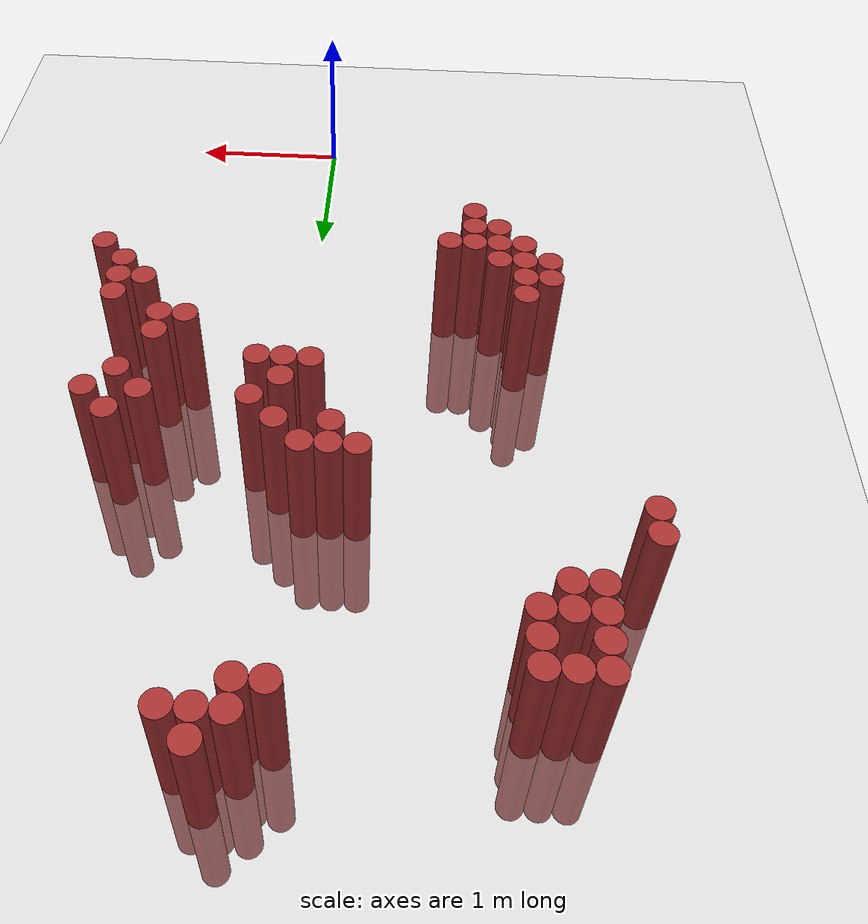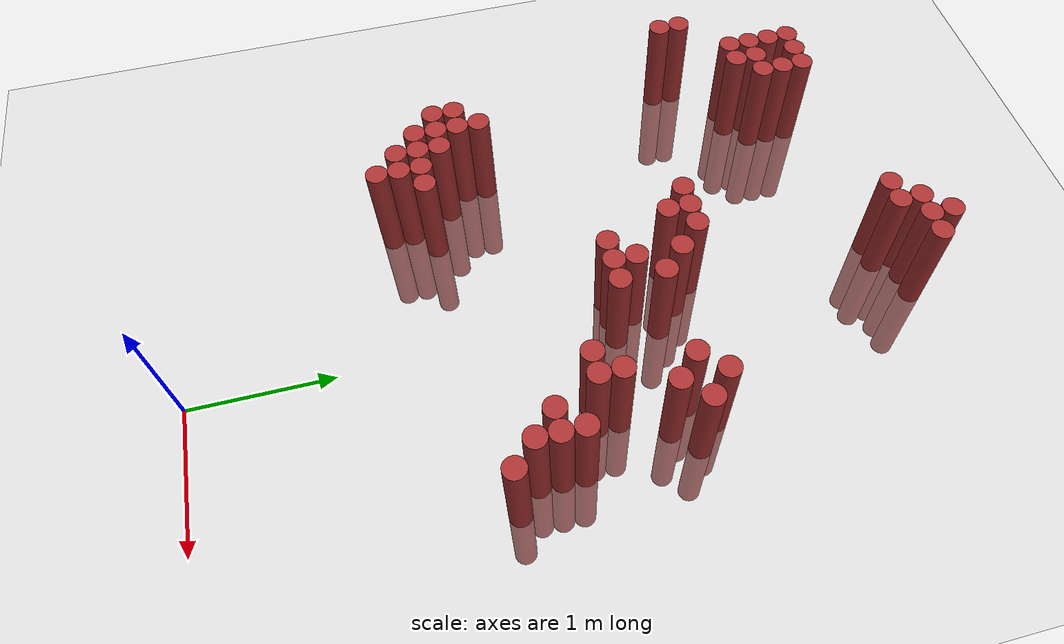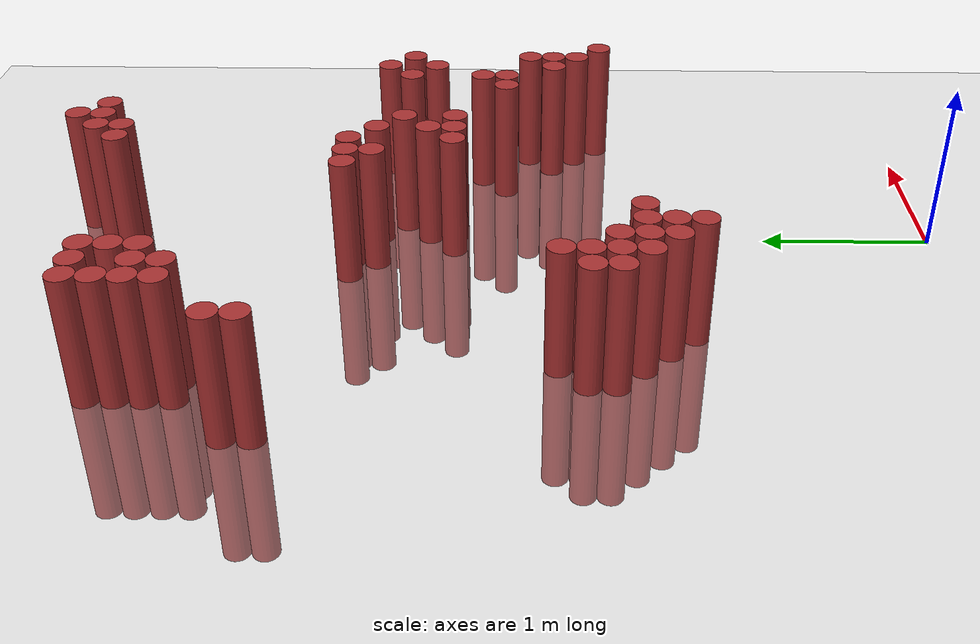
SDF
<sdf version="1.6">
 <world name="default">
  <model name="ground_plane">
   <static>1</static>
   <link name="link">
    <collision name="collision">
     <geometry><plane><normal>0 0 1</normal><size>100 100</size></plane></geometry>
     <surface><friction><ode><mu>100</mu><mu2>50</mu2></ode></friction></surface>
    </collision>
    <visual name="visual">
     <cast_shadows>0</cast_shadows>
     <geometry><plane><normal>0 0 1</normal><size>100 100</size></plane></geometry>
     <material>
      <script><uri>file://media/materials/scripts/gazebo.material</uri><name>Gazebo/Grey</name></script>
     </material>
    </visual>
   </link>
  </model>
  <model name="unit_cylinder_324">
   <static>1</static>
   <pose>-1.925000 3.775000 0.000000 0.000000 0.000000 0.000000</pose>
   <link name="link">
    <inertial>
     <mass>1</mass>
     <inertia><ixx>0.145833</ixx><ixy>0</ixy><ixz>0</ixz><iyy>0.145833</iyy><iyz>0</iyz><izz>0.125</izz></inertia>
    </inertial>
    <collision name="collision">
     <geometry><cylinder><radius>0.075000</radius><length>1.5</length></cylinder></geometry>
    </collision>
    <visual name="visual">
     <geometry><cylinder><radius>0.075000</radius><length>1.5</length></cylinder></geometry>
     <material>
      <ambient>0.648000 0.192000 0.192000 1</ambient>
      <diffuse>0.648000 0.192000 0.192000 1</diffuse>
     </material>
     <material>
      <script><name>Gazebo/Grey</name><uri>file://media/materials/scripts/gazebo.material</uri></script>
     </material>
    </visual>
   </link>
  </model>
  <model name="unit_cylinder_325">
   <static>1</static>
   <pose>-1.925000 3.925000 0.000000 0.000000 0.000000 0.000000</pose>
   <link name="link">
    <inertial>
     <mass>1</mass>
     <inertia><ixx>0.145833</ixx><ixy>0</ixy><ixz>0</ixz><iyy>0.145833</iyy><iyz>0</iyz><izz>0.125</izz></inertia>
    </inertial>
    <collision name="collision">
     <geometry><cylinder><radius>0.075000</radius><length>1.5</length></cylinder></geometry>
    </collision>
    <visual name="visual">
     <geometry><cylinder><radius>0.075000</radius><length>1.5</length></cylinder></geometry>
     <material>
      <ambient>0.648000 0.192000 0.192000 1</ambient>
      <diffuse>0.648000 0.192000 0.192000 1</diffuse>
     </material>
     <material>
      <script><name>Gazebo/Grey</name><uri>file://media/materials/scripts/gazebo.material</uri></script>
     </material>
    </visual>
   </link>
  </model>
  <model name="unit_cylinder_327">
   <static>1</static>
   <pose>-1.625000 4.225000 0.000000 0.000000 0.000000 0.000000</pose>
   <link name="link">
    <inertial>
     <mass>1</mass>
     <inertia><ixx>0.145833</ixx><ixy>0</ixy><ixz>0</ixz><iyy>0.145833</iyy><iyz>0</iyz><izz>0.125</izz></inertia>
    </inertial>
    <collision name="collision">
     <geometry><cylinder><radius>0.075000</radius><length>1.5</length></cylinder></geometry>
    </collision>
    <visual name="visual">
     <geometry><cylinder><radius>0.075000</radius><length>1.5</length></cylinder></geometry>
     <material>
      <ambient>0.648000 0.192000 0.192000 1</ambient>
      <diffuse>0.648000 0.192000 0.192000 1</diffuse>
     </material>
     <material>
      <script><name>Gazebo/Grey</name><uri>file://media/materials/scripts/gazebo.material</uri></script>
     </material>
    </visual>
   </link>
  </model>
  <model name="unit_cylinder_328">
   <static>1</static>
   <pose>-1.625000 4.375000 0.000000 0.000000 0.000000 0.000000</pose>
   <link name="link">
    <inertial>
     <mass>1</mass>
     <inertia><ixx>0.145833</ixx><ixy>0</ixy><ixz>0</ixz><iyy>0.145833</iyy><iyz>0</iyz><izz>0.125</izz></inertia>
    </inertial>
    <collision name="collision">
     <geometry><cylinder><radius>0.075000</radius><length>1.5</length></cylinder></geometry>
    </collision>
    <visual name="visual">
     <geometry><cylinder><radius>0.075000</radius><length>1.5</length></cylinder></geometry>
     <material>
      <ambient>0.648000 0.192000 0.192000 1</ambient>
      <diffuse>0.648000 0.192000 0.192000 1</diffuse>
     </material>
     <material>
      <script><name>Gazebo/Grey</name><uri>file://media/materials/scripts/gazebo.material</uri></script>
     </material>
    </visual>
   </link>
  </model>
  <model name="unit_cylinder_329">
   <static>1</static>
   <pose>-1.625000 4.525000 0.000000 0.000000 0.000000 0.000000</pose>
   <link name="link">
    <inertial>
     <mass>1</mass>
     <inertia><ixx>0.145833</ixx><ixy>0</ixy><ixz>0</ixz><iyy>0.145833</iyy><iyz>0</iyz><izz>0.125</izz></inertia>
    </inertial>
    <collision name="collision">
     <geometry><cylinder><radius>0.075000</radius><length>1.5</length></cylinder></geometry>
    </collision>
    <visual name="visual">
     <geometry><cylinder><radius>0.075000</radius><length>1.5</length></cylinder></geometry>
     <material>
      <ambient>0.648000 0.192000 0.192000 1</ambient>
      <diffuse>0.648000 0.192000 0.192000 1</diffuse>
     </material>
     <material>
      <script><name>Gazebo/Grey</name><uri>file://media/materials/scripts/gazebo.material</uri></script>
     </material>
    </visual>
   </link>
  </model>
  <model name="unit_cylinder_330">
   <static>1</static>
   <pose>-1.625000 4.675000 0.000000 0.000000 0.000000 0.000000</pose>
   <link name="link">
    <inertial>
     <mass>1</mass>
     <inertia><ixx>0.145833</ixx><ixy>0</ixy><ixz>0</ixz><iyy>0.145833</iyy><iyz>0</iyz><izz>0.125</izz></inertia>
    </inertial>
    <collision name="collision">
     <geometry><cylinder><radius>0.075000</radius><length>1.5</length></cylinder></geometry>
    </collision>
    <visual name="visual">
     <geometry><cylinder><radius>0.075000</radius><length>1.5</length></cylinder></geometry>
     <material>
      <ambient>0.648000 0.192000 0.192000 1</ambient>
      <diffuse>0.648000 0.192000 0.192000 1</diffuse>
     </material>
     <material>
      <script><name>Gazebo/Grey</name><uri>file://media/materials/scripts/gazebo.material</uri></script>
     </material>
    </visual>
   </link>
  </model>
  <model name="unit_cylinder_333">
   <static>1</static>
   <pose>-1.475000 1.975000 0.000000 0.000000 0.000000 0.000000</pose>
   <link name="link">
    <inertial>
     <mass>1</mass>
     <inertia><ixx>0.145833</ixx><ixy>0</ixy><ixz>0</ixz><iyy>0.145833</iyy><iyz>0</iyz><izz>0.125</izz></inertia>
    </inertial>
    <collision name="collision">
     <geometry><cylinder><radius>0.075000</radius><length>1.5</length></cylinder></geometry>
    </collision>
    <visual name="visual">
     <geometry><cylinder><radius>0.075000</radius><length>1.5</length></cylinder></geometry>
     <material>
      <ambient>0.648000 0.192000 0.192000 1</ambient>
      <diffuse>0.648000 0.192000 0.192000 1</diffuse>
     </material>
     <material>
      <script><name>Gazebo/Grey</name><uri>file://media/materials/scripts/gazebo.material</uri></script>
     </material>
    </visual>
   </link>
  </model>
  <model name="unit_cylinder_334">
   <static>1</static>
   <pose>-1.475000 2.125000 0.000000 0.000000 0.000000 0.000000</pose>
   <link name="link">
    <inertial>
     <mass>1</mass>
     <inertia><ixx>0.145833</ixx><ixy>0</ixy><ixz>0</ixz><iyy>0.145833</iyy><iyz>0</iyz><izz>0.125</izz></inertia>
    </inertial>
    <collision name="collision">
     <geometry><cylinder><radius>0.075000</radius><length>1.5</length></cylinder></geometry>
    </collision>
    <visual name="visual">
     <geometry><cylinder><radius>0.075000</radius><length>1.5</length></cylinder></geometry>
     <material>
      <ambient>0.648000 0.192000 0.192000 1</ambient>
      <diffuse>0.648000 0.192000 0.192000 1</diffuse>
     </material>
     <material>
      <script><name>Gazebo/Grey</name><uri>file://media/materials/scripts/gazebo.material</uri></script>
     </material>
    </visual>
   </link>
  </model>
  <model name="unit_cylinder_335">
   <static>1</static>
   <pose>-1.475000 4.225000 0.000000 0.000000 0.000000 0.000000</pose>
   <link name="link">
    <inertial>
     <mass>1</mass>
     <inertia><ixx>0.145833</ixx><ixy>0</ixy><ixz>0</ixz><iyy>0.145833</iyy><iyz>0</iyz><izz>0.125</izz></inertia>
    </inertial>
    <collision name="collision">
     <geometry><cylinder><radius>0.075000</radius><length>1.5</length></cylinder></geometry>
    </collision>
    <visual name="visual">
     <geometry><cylinder><radius>0.075000</radius><length>1.5</length></cylinder></geometry>
     <material>
      <ambient>0.648000 0.192000 0.192000 1</ambient>
      <diffuse>0.648000 0.192000 0.192000 1</diffuse>
     </material>
     <material>
      <script><name>Gazebo/Grey</name><uri>file://media/materials/scripts/gazebo.material</uri></script>
     </material>
    </visual>
   </link>
  </model>
  <model name="unit_cylinder_336">
   <static>1</static>
   <pose>-1.475000 4.375000 0.000000 0.000000 0.000000 0.000000</pose>
   <link name="link">
    <inertial>
     <mass>1</mass>
     <inertia><ixx>0.145833</ixx><ixy>0</ixy><ixz>0</ixz><iyy>0.145833</iyy><iyz>0</iyz><izz>0.125</izz></inertia>
    </inertial>
    <collision name="collision">
     <geometry><cylinder><radius>0.075000</radius><length>1.5</length></cylinder></geometry>
    </collision>
    <visual name="visual">
     <geometry><cylinder><radius>0.075000</radius><length>1.5</length></cylinder></geometry>
     <material>
      <ambient>0.648000 0.192000 0.192000 1</ambient>
      <diffuse>0.648000 0.192000 0.192000 1</diffuse>
     </material>
     <material>
      <script><name>Gazebo/Grey</name><uri>file://media/materials/scripts/gazebo.material</uri></script>
     </material>
    </visual>
   </link>
  </model>
  <model name="unit_cylinder_337">
   <static>1</static>
   <pose>-1.475000 4.675000 0.000000 0.000000 0.000000 0.000000</pose>
   <link name="link">
    <inertial>
     <mass>1</mass>
     <inertia><ixx>0.145833</ixx><ixy>0</ixy><ixz>0</ixz><iyy>0.145833</iyy><iyz>0</iyz><izz>0.125</izz></inertia>
    </inertial>
    <collision name="collision">
     <geometry><cylinder><radius>0.075000</radius><length>1.5</length></cylinder></geometry>
    </collision>
    <visual name="visual">
     <geometry><cylinder><radius>0.075000</radius><length>1.5</length></cylinder></geometry>
     <material>
      <ambient>0.648000 0.192000 0.192000 1</ambient>
      <diffuse>0.648000 0.192000 0.192000 1</diffuse>
     </material>
     <material>
      <script><name>Gazebo/Grey</name><uri>file://media/materials/scripts/gazebo.material</uri></script>
     </material>
    </visual>
   </link>
  </model>
  <model name="unit_cylinder_343">
   <static>1</static>
   <pose>-1.325000 1.825000 0.000000 0.000000 0.000000 0.000000</pose>
   <link name="link">
    <inertial>
     <mass>1</mass>
     <inertia><ixx>0.145833</ixx><ixy>0</ixy><ixz>0</ixz><iyy>0.145833</iyy><iyz>0</iyz><izz>0.125</izz></inertia>
    </inertial>
    <collision name="collision">
     <geometry><cylinder><radius>0.075000</radius><length>1.5</length></cylinder></geometry>
    </collision>
    <visual name="visual">
     <geometry><cylinder><radius>0.075000</radius><length>1.5</length></cylinder></geometry>
     <material>
      <ambient>0.648000 0.192000 0.192000 1</ambient>
      <diffuse>0.648000 0.192000 0.192000 1</diffuse>
     </material>
     <material>
      <script><name>Gazebo/Grey</name><uri>file://media/materials/scripts/gazebo.material</uri></script>
     </material>
    </visual>
   </link>
  </model>
  <model name="unit_cylinder_344">
   <static>1</static>
   <pose>-1.325000 1.975000 0.000000 0.000000 0.000000 0.000000</pose>
   <link name="link">
    <inertial>
     <mass>1</mass>
     <inertia><ixx>0.145833</ixx><ixy>0</ixy><ixz>0</ixz><iyy>0.145833</iyy><iyz>0</iyz><izz>0.125</izz></inertia>
    </inertial>
    <collision name="collision">
     <geometry><cylinder><radius>0.075000</radius><length>1.5</length></cylinder></geometry>
    </collision>
    <visual name="visual">
     <geometry><cylinder><radius>0.075000</radius><length>1.5</length></cylinder></geometry>
     <material>
      <ambient>0.648000 0.192000 0.192000 1</ambient>
      <diffuse>0.648000 0.192000 0.192000 1</diffuse>
     </material>
     <material>
      <script><name>Gazebo/Grey</name><uri>file://media/materials/scripts/gazebo.material</uri></script>
     </material>
    </visual>
   </link>
  </model>
  <model name="unit_cylinder_345">
   <static>1</static>
   <pose>-1.325000 2.125000 0.000000 0.000000 0.000000 0.000000</pose>
   <link name="link">
    <inertial>
     <mass>1</mass>
     <inertia><ixx>0.145833</ixx><ixy>0</ixy><ixz>0</ixz><iyy>0.145833</iyy><iyz>0</iyz><izz>0.125</izz></inertia>
    </inertial>
    <collision name="collision">
     <geometry><cylinder><radius>0.075000</radius><length>1.5</length></cylinder></geometry>
    </collision>
    <visual name="visual">
     <geometry><cylinder><radius>0.075000</radius><length>1.5</length></cylinder></geometry>
     <material>
      <ambient>0.648000 0.192000 0.192000 1</ambient>
      <diffuse>0.648000 0.192000 0.192000 1</diffuse>
     </material>
     <material>
      <script><name>Gazebo/Grey</name><uri>file://media/materials/scripts/gazebo.material</uri></script>
     </material>
    </visual>
   </link>
  </model>
  <model name="unit_cylinder_346">
   <static>1</static>
   <pose>-1.325000 2.275000 0.000000 0.000000 0.000000 0.000000</pose>
   <link name="link">
    <inertial>
     <mass>1</mass>
     <inertia><ixx>0.145833</ixx><ixy>0</ixy><ixz>0</ixz><iyy>0.145833</iyy><iyz>0</iyz><izz>0.125</izz></inertia>
    </inertial>
    <collision name="collision">
     <geometry><cylinder><radius>0.075000</radius><length>1.5</length></cylinder></geometry>
    </collision>
    <visual name="visual">
     <geometry><cylinder><radius>0.075000</radius><length>1.5</length></cylinder></geometry>
     <material>
      <ambient>0.648000 0.192000 0.192000 1</ambient>
      <diffuse>0.648000 0.192000 0.192000 1</diffuse>
     </material>
     <material>
      <script><name>Gazebo/Grey</name><uri>file://media/materials/scripts/gazebo.material</uri></script>
     </material>
    </visual>
   </link>
  </model>
  <model name="unit_cylinder_347">
   <static>1</static>
   <pose>-1.325000 4.375000 0.000000 0.000000 0.000000 0.000000</pose>
   <link name="link">
    <inertial>
     <mass>1</mass>
     <inertia><ixx>0.145833</ixx><ixy>0</ixy><ixz>0</ixz><iyy>0.145833</iyy><iyz>0</iyz><izz>0.125</izz></inertia>
    </inertial>
    <collision name="collision">
     <geometry><cylinder><radius>0.075000</radius><length>1.5</length></cylinder></geometry>
    </collision>
    <visual name="visual">
     <geometry><cylinder><radius>0.075000</radius><length>1.5</length></cylinder></geometry>
     <material>
      <ambient>0.648000 0.192000 0.192000 1</ambient>
      <diffuse>0.648000 0.192000 0.192000 1</diffuse>
     </material>
     <material>
      <script><name>Gazebo/Grey</name><uri>file://media/materials/scripts/gazebo.material</uri></script>
     </material>
    </visual>
   </link>
  </model>
  <model name="unit_cylinder_348">
   <static>1</static>
   <pose>-1.325000 4.525000 0.000000 0.000000 0.000000 0.000000</pose>
   <link name="link">
    <inertial>
     <mass>1</mass>
     <inertia><ixx>0.145833</ixx><ixy>0</ixy><ixz>0</ixz><iyy>0.145833</iyy><iyz>0</iyz><izz>0.125</izz></inertia>
    </inertial>
    <collision name="collision">
     <geometry><cylinder><radius>0.075000</radius><length>1.5</length></cylinder></geometry>
    </collision>
    <visual name="visual">
     <geometry><cylinder><radius>0.075000</radius><length>1.5</length></cylinder></geometry>
     <material>
      <ambient>0.648000 0.192000 0.192000 1</ambient>
      <diffuse>0.648000 0.192000 0.192000 1</diffuse>
     </material>
     <material>
      <script><name>Gazebo/Grey</name><uri>file://media/materials/scripts/gazebo.material</uri></script>
     </material>
    </visual>
   </link>
  </model>
  <model name="unit_cylinder_349">
   <static>1</static>
   <pose>-1.325000 4.675000 0.000000 0.000000 0.000000 0.000000</pose>
   <link name="link">
    <inertial>
     <mass>1</mass>
     <inertia><ixx>0.145833</ixx><ixy>0</ixy><ixz>0</ixz><iyy>0.145833</iyy><iyz>0</iyz><izz>0.125</izz></inertia>
    </inertial>
    <collision name="collision">
     <geometry><cylinder><radius>0.075000</radius><length>1.5</length></cylinder></geometry>
    </collision>
    <visual name="visual">
     <geometry><cylinder><radius>0.075000</radius><length>1.5</length></cylinder></geometry>
     <material>
      <ambient>0.648000 0.192000 0.192000 1</ambient>
      <diffuse>0.648000 0.192000 0.192000 1</diffuse>
     </material>
     <material>
      <script><name>Gazebo/Grey</name><uri>file://media/materials/scripts/gazebo.material</uri></script>
     </material>
    </visual>
   </link>
  </model>
  <model name="unit_cylinder_352">
   <static>1</static>
   <pose>-1.175000 1.675000 0.000000 0.000000 0.000000 0.000000</pose>
   <link name="link">
    <inertial>
     <mass>1</mass>
     <inertia><ixx>0.145833</ixx><ixy>0</ixy><ixz>0</ixz><iyy>0.145833</iyy><iyz>0</iyz><izz>0.125</izz></inertia>
    </inertial>
    <collision name="collision">
     <geometry><cylinder><radius>0.075000</radius><length>1.5</length></cylinder></geometry>
    </collision>
    <visual name="visual">
     <geometry><cylinder><radius>0.075000</radius><length>1.5</length></cylinder></geometry>
     <material>
      <ambient>0.648000 0.192000 0.192000 1</ambient>
      <diffuse>0.648000 0.192000 0.192000 1</diffuse>
     </material>
     <material>
      <script><name>Gazebo/Grey</name><uri>file://media/materials/scripts/gazebo.material</uri></script>
     </material>
    </visual>
   </link>
  </model>
  <model name="unit_cylinder_353">
   <static>1</static>
   <pose>-1.175000 1.825000 0.000000 0.000000 0.000000 0.000000</pose>
   <link name="link">
    <inertial>
     <mass>1</mass>
     <inertia><ixx>0.145833</ixx><ixy>0</ixy><ixz>0</ixz><iyy>0.145833</iyy><iyz>0</iyz><izz>0.125</izz></inertia>
    </inertial>
    <collision name="collision">
     <geometry><cylinder><radius>0.075000</radius><length>1.5</length></cylinder></geometry>
    </collision>
    <visual name="visual">
     <geometry><cylinder><radius>0.075000</radius><length>1.5</length></cylinder></geometry>
     <material>
      <ambient>0.648000 0.192000 0.192000 1</ambient>
      <diffuse>0.648000 0.192000 0.192000 1</diffuse>
     </material>
     <material>
      <script><name>Gazebo/Grey</name><uri>file://media/materials/scripts/gazebo.material</uri></script>
     </material>
    </visual>
   </link>
  </model>
  <model name="unit_cylinder_354">
   <static>1</static>
   <pose>-1.175000 1.975000 0.000000 0.000000 0.000000 0.000000</pose>
   <link name="link">
    <inertial>
     <mass>1</mass>
     <inertia><ixx>0.145833</ixx><ixy>0</ixy><ixz>0</ixz><iyy>0.145833</iyy><iyz>0</iyz><izz>0.125</izz></inertia>
    </inertial>
    <collision name="collision">
     <geometry><cylinder><radius>0.075000</radius><length>1.5</length></cylinder></geometry>
    </collision>
    <visual name="visual">
     <geometry><cylinder><radius>0.075000</radius><length>1.5</length></cylinder></geometry>
     <material>
      <ambient>0.648000 0.192000 0.192000 1</ambient>
      <diffuse>0.648000 0.192000 0.192000 1</diffuse>
     </material>
     <material>
      <script><name>Gazebo/Grey</name><uri>file://media/materials/scripts/gazebo.material</uri></script>
     </material>
    </visual>
   </link>
  </model>
  <model name="unit_cylinder_355">
   <static>1</static>
   <pose>-1.025000 1.525000 0.000000 0.000000 0.000000 0.000000</pose>
   <link name="link">
    <inertial>
     <mass>1</mass>
     <inertia><ixx>0.145833</ixx><ixy>0</ixy><ixz>0</ixz><iyy>0.145833</iyy><iyz>0</iyz><izz>0.125</izz></inertia>
    </inertial>
    <collision name="collision">
     <geometry><cylinder><radius>0.075000</radius><length>1.5</length></cylinder></geometry>
    </collision>
    <visual name="visual">
     <geometry><cylinder><radius>0.075000</radius><length>1.5</length></cylinder></geometry>
     <material>
      <ambient>0.648000 0.192000 0.192000 1</ambient>
      <diffuse>0.648000 0.192000 0.192000 1</diffuse>
     </material>
     <material>
      <script><name>Gazebo/Grey</name><uri>file://media/materials/scripts/gazebo.material</uri></script>
     </material>
    </visual>
   </link>
  </model>
  <model name="unit_cylinder_356">
   <static>1</static>
   <pose>-1.025000 1.675000 0.000000 0.000000 0.000000 0.000000</pose>
   <link name="link">
    <inertial>
     <mass>1</mass>
     <inertia><ixx>0.145833</ixx><ixy>0</ixy><ixz>0</ixz><iyy>0.145833</iyy><iyz>0</iyz><izz>0.125</izz></inertia>
    </inertial>
    <collision name="collision">
     <geometry><cylinder><radius>0.075000</radius><length>1.5</length></cylinder></geometry>
    </collision>
    <visual name="visual">
     <geometry><cylinder><radius>0.075000</radius><length>1.5</length></cylinder></geometry>
     <material>
      <ambient>0.648000 0.192000 0.192000 1</ambient>
      <diffuse>0.648000 0.192000 0.192000 1</diffuse>
     </material>
     <material>
      <script><name>Gazebo/Grey</name><uri>file://media/materials/scripts/gazebo.material</uri></script>
     </material>
    </visual>
   </link>
  </model>
  <model name="unit_cylinder_357">
   <static>1</static>
   <pose>-1.025000 1.825000 0.000000 0.000000 0.000000 0.000000</pose>
   <link name="link">
    <inertial>
     <mass>1</mass>
     <inertia><ixx>0.145833</ixx><ixy>0</ixy><ixz>0</ixz><iyy>0.145833</iyy><iyz>0</iyz><izz>0.125</izz></inertia>
    </inertial>
    <collision name="collision">
     <geometry><cylinder><radius>0.075000</radius><length>1.5</length></cylinder></geometry>
    </collision>
    <visual name="visual">
     <geometry><cylinder><radius>0.075000</radius><length>1.5</length></cylinder></geometry>
     <material>
      <ambient>0.648000 0.192000 0.192000 1</ambient>
      <diffuse>0.648000 0.192000 0.192000 1</diffuse>
     </material>
     <material>
      <script><name>Gazebo/Grey</name><uri>file://media/materials/scripts/gazebo.material</uri></script>
     </material>
    </visual>
   </link>
  </model>
  <model name="unit_cylinder_360">
   <static>1</static>
   <pose>-0.875000 1.825000 0.000000 0.000000 0.000000 0.000000</pose>
   <link name="link">
    <inertial>
     <mass>1</mass>
     <inertia><ixx>0.145833</ixx><ixy>0</ixy><ixz>0</ixz><iyy>0.145833</iyy><iyz>0</iyz><izz>0.125</izz></inertia>
    </inertial>
    <collision name="collision">
     <geometry><cylinder><radius>0.075000</radius><length>1.5</length></cylinder></geometry>
    </collision>
    <visual name="visual">
     <geometry><cylinder><radius>0.075000</radius><length>1.5</length></cylinder></geometry>
     <material>
      <ambient>0.648000 0.192000 0.192000 1</ambient>
      <diffuse>0.648000 0.192000 0.192000 1</diffuse>
     </material>
     <material>
      <script><name>Gazebo/Grey</name><uri>file://media/materials/scripts/gazebo.material</uri></script>
     </material>
    </visual>
   </link>
  </model>
  <model name="unit_cylinder_367">
   <static>1</static>
   <pose>-0.425000 3.475000 0.000000 0.000000 0.000000 0.000000</pose>
   <link name="link">
    <inertial>
     <mass>1</mass>
     <inertia><ixx>0.145833</ixx><ixy>0</ixy><ixz>0</ixz><iyy>0.145833</iyy><iyz>0</iyz><izz>0.125</izz></inertia>
    </inertial>
    <collision name="collision">
     <geometry><cylinder><radius>0.075000</radius><length>1.5</length></cylinder></geometry>
    </collision>
    <visual name="visual">
     <geometry><cylinder><radius>0.075000</radius><length>1.5</length></cylinder></geometry>
     <material>
      <ambient>0.648000 0.192000 0.192000 1</ambient>
      <diffuse>0.648000 0.192000 0.192000 1</diffuse>
     </material>
     <material>
      <script><name>Gazebo/Grey</name><uri>file://media/materials/scripts/gazebo.material</uri></script>
     </material>
    </visual>
   </link>
  </model>
  <model name="unit_cylinder_368">
   <static>1</static>
   <pose>-0.275000 3.325000 0.000000 0.000000 0.000000 0.000000</pose>
   <link name="link">
    <inertial>
     <mass>1</mass>
     <inertia><ixx>0.145833</ixx><ixy>0</ixy><ixz>0</ixz><iyy>0.145833</iyy><iyz>0</iyz><izz>0.125</izz></inertia>
    </inertial>
    <collision name="collision">
     <geometry><cylinder><radius>0.075000</radius><length>1.5</length></cylinder></geometry>
    </collision>
    <visual name="visual">
     <geometry><cylinder><radius>0.075000</radius><length>1.5</length></cylinder></geometry>
     <material>
      <ambient>0.648000 0.192000 0.192000 1</ambient>
      <diffuse>0.648000 0.192000 0.192000 1</diffuse>
     </material>
     <material>
      <script><name>Gazebo/Grey</name><uri>file://media/materials/scripts/gazebo.material</uri></script>
     </material>
    </visual>
   </link>
  </model>
  <model name="unit_cylinder_369">
   <static>1</static>
   <pose>-0.275000 3.475000 0.000000 0.000000 0.000000 0.000000</pose>
   <link name="link">
    <inertial>
     <mass>1</mass>
     <inertia><ixx>0.145833</ixx><ixy>0</ixy><ixz>0</ixz><iyy>0.145833</iyy><iyz>0</iyz><izz>0.125</izz></inertia>
    </inertial>
    <collision name="collision">
     <geometry><cylinder><radius>0.075000</radius><length>1.5</length></cylinder></geometry>
    </collision>
    <visual name="visual">
     <geometry><cylinder><radius>0.075000</radius><length>1.5</length></cylinder></geometry>
     <material>
      <ambient>0.648000 0.192000 0.192000 1</ambient>
      <diffuse>0.648000 0.192000 0.192000 1</diffuse>
     </material>
     <material>
      <script><name>Gazebo/Grey</name><uri>file://media/materials/scripts/gazebo.material</uri></script>
     </material>
    </visual>
   </link>
  </model>
  <model name="unit_cylinder_371">
   <static>1</static>
   <pose>-0.125000 2.875000 0.000000 0.000000 0.000000 0.000000</pose>
   <link name="link">
    <inertial>
     <mass>1</mass>
     <inertia><ixx>0.145833</ixx><ixy>0</ixy><ixz>0</ixz><iyy>0.145833</iyy><iyz>0</iyz><izz>0.125</izz></inertia>
    </inertial>
    <collision name="collision">
     <geometry><cylinder><radius>0.075000</radius><length>1.5</length></cylinder></geometry>
    </collision>
    <visual name="visual">
     <geometry><cylinder><radius>0.075000</radius><length>1.5</length></cylinder></geometry>
     <material>
      <ambient>0.648000 0.192000 0.192000 1</ambient>
      <diffuse>0.648000 0.192000 0.192000 1</diffuse>
     </material>
     <material>
      <script><name>Gazebo/Grey</name><uri>file://media/materials/scripts/gazebo.material</uri></script>
     </material>
    </visual>
   </link>
  </model>
  <model name="unit_cylinder_372">
   <static>1</static>
   <pose>-0.125000 3.475000 0.000000 0.000000 0.000000 0.000000</pose>
   <link name="link">
    <inertial>
     <mass>1</mass>
     <inertia><ixx>0.145833</ixx><ixy>0</ixy><ixz>0</ixz><iyy>0.145833</iyy><iyz>0</iyz><izz>0.125</izz></inertia>
    </inertial>
    <collision name="collision">
     <geometry><cylinder><radius>0.075000</radius><length>1.5</length></cylinder></geometry>
    </collision>
    <visual name="visual">
     <geometry><cylinder><radius>0.075000</radius><length>1.5</length></cylinder></geometry>
     <material>
      <ambient>0.648000 0.192000 0.192000 1</ambient>
      <diffuse>0.648000 0.192000 0.192000 1</diffuse>
     </material>
     <material>
      <script><name>Gazebo/Grey</name><uri>file://media/materials/scripts/gazebo.material</uri></script>
     </material>
    </visual>
   </link>
  </model>
  <model name="unit_cylinder_373">
   <static>1</static>
   <pose>-0.125000 4.825000 0.000000 0.000000 0.000000 0.000000</pose>
   <link name="link">
    <inertial>
     <mass>1</mass>
     <inertia><ixx>0.145833</ixx><ixy>0</ixy><ixz>0</ixz><iyy>0.145833</iyy><iyz>0</iyz><izz>0.125</izz></inertia>
    </inertial>
    <collision name="collision">
     <geometry><cylinder><radius>0.075000</radius><length>1.5</length></cylinder></geometry>
    </collision>
    <visual name="visual">
     <geometry><cylinder><radius>0.075000</radius><length>1.5</length></cylinder></geometry>
     <material>
      <ambient>0.648000 0.192000 0.192000 1</ambient>
      <diffuse>0.648000 0.192000 0.192000 1</diffuse>
     </material>
     <material>
      <script><name>Gazebo/Grey</name><uri>file://media/materials/scripts/gazebo.material</uri></script>
     </material>
    </visual>
   </link>
  </model>
  <model name="unit_cylinder_376">
   <static>1</static>
   <pose>0.025000 2.875000 0.000000 0.000000 0.000000 0.000000</pose>
   <link name="link">
    <inertial>
     <mass>1</mass>
     <inertia><ixx>0.145833</ixx><ixy>0</ixy><ixz>0</ixz><iyy>0.145833</iyy><iyz>0</iyz><izz>0.125</izz></inertia>
    </inertial>
    <collision name="collision">
     <geometry><cylinder><radius>0.075000</radius><length>1.5</length></cylinder></geometry>
    </collision>
    <visual name="visual">
     <geometry><cylinder><radius>0.075000</radius><length>1.5</length></cylinder></geometry>
     <material>
      <ambient>0.648000 0.192000 0.192000 1</ambient>
      <diffuse>0.648000 0.192000 0.192000 1</diffuse>
     </material>
     <material>
      <script><name>Gazebo/Grey</name><uri>file://media/materials/scripts/gazebo.material</uri></script>
     </material>
    </visual>
   </link>
  </model>
  <model name="unit_cylinder_377">
   <static>1</static>
   <pose>0.025000 3.025000 0.000000 0.000000 0.000000 0.000000</pose>
   <link name="link">
    <inertial>
     <mass>1</mass>
     <inertia><ixx>0.145833</ixx><ixy>0</ixy><ixz>0</ixz><iyy>0.145833</iyy><iyz>0</iyz><izz>0.125</izz></inertia>
    </inertial>
    <collision name="collision">
     <geometry><cylinder><radius>0.075000</radius><length>1.5</length></cylinder></geometry>
    </collision>
    <visual name="visual">
     <geometry><cylinder><radius>0.075000</radius><length>1.5</length></cylinder></geometry>
     <material>
      <ambient>0.648000 0.192000 0.192000 1</ambient>
      <diffuse>0.648000 0.192000 0.192000 1</diffuse>
     </material>
     <material>
      <script><name>Gazebo/Grey</name><uri>file://media/materials/scripts/gazebo.material</uri></script>
     </material>
    </visual>
   </link>
  </model>
  <model name="unit_cylinder_378">
   <static>1</static>
   <pose>0.025000 3.325000 0.000000 0.000000 0.000000 0.000000</pose>
   <link name="link">
    <inertial>
     <mass>1</mass>
     <inertia><ixx>0.145833</ixx><ixy>0</ixy><ixz>0</ixz><iyy>0.145833</iyy><iyz>0</iyz><izz>0.125</izz></inertia>
    </inertial>
    <collision name="collision">
     <geometry><cylinder><radius>0.075000</radius><length>1.5</length></cylinder></geometry>
    </collision>
    <visual name="visual">
     <geometry><cylinder><radius>0.075000</radius><length>1.5</length></cylinder></geometry>
     <material>
      <ambient>0.648000 0.192000 0.192000 1</ambient>
      <diffuse>0.648000 0.192000 0.192000 1</diffuse>
     </material>
     <material>
      <script><name>Gazebo/Grey</name><uri>file://media/materials/scripts/gazebo.material</uri></script>
     </material>
    </visual>
   </link>
  </model>
  <model name="unit_cylinder_379">
   <static>1</static>
   <pose>0.025000 4.825000 0.000000 0.000000 0.000000 0.000000</pose>
   <link name="link">
    <inertial>
     <mass>1</mass>
     <inertia><ixx>0.145833</ixx><ixy>0</ixy><ixz>0</ixz><iyy>0.145833</iyy><iyz>0</iyz><izz>0.125</izz></inertia>
    </inertial>
    <collision name="collision">
     <geometry><cylinder><radius>0.075000</radius><length>1.5</length></cylinder></geometry>
    </collision>
    <visual name="visual">
     <geometry><cylinder><radius>0.075000</radius><length>1.5</length></cylinder></geometry>
     <material>
      <ambient>0.648000 0.192000 0.192000 1</ambient>
      <diffuse>0.648000 0.192000 0.192000 1</diffuse>
     </material>
     <material>
      <script><name>Gazebo/Grey</name><uri>file://media/materials/scripts/gazebo.material</uri></script>
     </material>
    </visual>
   </link>
  </model>
  <model name="unit_cylinder_380">
   <static>1</static>
   <pose>0.025000 4.975000 0.000000 0.000000 0.000000 0.000000</pose>
   <link name="link">
    <inertial>
     <mass>1</mass>
     <inertia><ixx>0.145833</ixx><ixy>0</ixy><ixz>0</ixz><iyy>0.145833</iyy><iyz>0</iyz><izz>0.125</izz></inertia>
    </inertial>
    <collision name="collision">
     <geometry><cylinder><radius>0.075000</radius><length>1.5</length></cylinder></geometry>
    </collision>
    <visual name="visual">
     <geometry><cylinder><radius>0.075000</radius><length>1.5</length></cylinder></geometry>
     <material>
      <ambient>0.648000 0.192000 0.192000 1</ambient>
      <diffuse>0.648000 0.192000 0.192000 1</diffuse>
     </material>
     <material>
      <script><name>Gazebo/Grey</name><uri>file://media/materials/scripts/gazebo.material</uri></script>
     </material>
    </visual>
   </link>
  </model>
  <model name="unit_cylinder_383">
   <static>1</static>
   <pose>0.175000 2.875000 0.000000 0.000000 0.000000 0.000000</pose>
   <link name="link">
    <inertial>
     <mass>1</mass>
     <inertia><ixx>0.145833</ixx><ixy>0</ixy><ixz>0</ixz><iyy>0.145833</iyy><iyz>0</iyz><izz>0.125</izz></inertia>
    </inertial>
    <collision name="collision">
     <geometry><cylinder><radius>0.075000</radius><length>1.5</length></cylinder></geometry>
    </collision>
    <visual name="visual">
     <geometry><cylinder><radius>0.075000</radius><length>1.5</length></cylinder></geometry>
     <material>
      <ambient>0.648000 0.192000 0.192000 1</ambient>
      <diffuse>0.648000 0.192000 0.192000 1</diffuse>
     </material>
     <material>
      <script><name>Gazebo/Grey</name><uri>file://media/materials/scripts/gazebo.material</uri></script>
     </material>
    </visual>
   </link>
  </model>
  <model name="unit_cylinder_384">
   <static>1</static>
   <pose>0.175000 3.175000 0.000000 0.000000 0.000000 0.000000</pose>
   <link name="link">
    <inertial>
     <mass>1</mass>
     <inertia><ixx>0.145833</ixx><ixy>0</ixy><ixz>0</ixz><iyy>0.145833</iyy><iyz>0</iyz><izz>0.125</izz></inertia>
    </inertial>
    <collision name="collision">
     <geometry><cylinder><radius>0.075000</radius><length>1.5</length></cylinder></geometry>
    </collision>
    <visual name="visual">
     <geometry><cylinder><radius>0.075000</radius><length>1.5</length></cylinder></geometry>
     <material>
      <ambient>0.648000 0.192000 0.192000 1</ambient>
      <diffuse>0.648000 0.192000 0.192000 1</diffuse>
     </material>
     <material>
      <script><name>Gazebo/Grey</name><uri>file://media/materials/scripts/gazebo.material</uri></script>
     </material>
    </visual>
   </link>
  </model>
  <model name="unit_cylinder_385">
   <static>1</static>
   <pose>0.175000 4.975000 0.000000 0.000000 0.000000 0.000000</pose>
   <link name="link">
    <inertial>
     <mass>1</mass>
     <inertia><ixx>0.145833</ixx><ixy>0</ixy><ixz>0</ixz><iyy>0.145833</iyy><iyz>0</iyz><izz>0.125</izz></inertia>
    </inertial>
    <collision name="collision">
     <geometry><cylinder><radius>0.075000</radius><length>1.5</length></cylinder></geometry>
    </collision>
    <visual name="visual">
     <geometry><cylinder><radius>0.075000</radius><length>1.5</length></cylinder></geometry>
     <material>
      <ambient>0.648000 0.192000 0.192000 1</ambient>
      <diffuse>0.648000 0.192000 0.192000 1</diffuse>
     </material>
     <material>
      <script><name>Gazebo/Grey</name><uri>file://media/materials/scripts/gazebo.material</uri></script>
     </material>
    </visual>
   </link>
  </model>
  <model name="unit_cylinder_386">
   <static>1</static>
   <pose>0.175000 5.125000 0.000000 0.000000 0.000000 0.000000</pose>
   <link name="link">
    <inertial>
     <mass>1</mass>
     <inertia><ixx>0.145833</ixx><ixy>0</ixy><ixz>0</ixz><iyy>0.145833</iyy><iyz>0</iyz><izz>0.125</izz></inertia>
    </inertial>
    <collision name="collision">
     <geometry><cylinder><radius>0.075000</radius><length>1.5</length></cylinder></geometry>
    </collision>
    <visual name="visual">
     <geometry><cylinder><radius>0.075000</radius><length>1.5</length></cylinder></geometry>
     <material>
      <ambient>0.648000 0.192000 0.192000 1</ambient>
      <diffuse>0.648000 0.192000 0.192000 1</diffuse>
     </material>
     <material>
      <script><name>Gazebo/Grey</name><uri>file://media/materials/scripts/gazebo.material</uri></script>
     </material>
    </visual>
   </link>
  </model>
  <model name="unit_cylinder_389">
   <static>1</static>
   <pose>0.325000 4.975000 0.000000 0.000000 0.000000 0.000000</pose>
   <link name="link">
    <inertial>
     <mass>1</mass>
     <inertia><ixx>0.145833</ixx><ixy>0</ixy><ixz>0</ixz><iyy>0.145833</iyy><iyz>0</iyz><izz>0.125</izz></inertia>
    </inertial>
    <collision name="collision">
     <geometry><cylinder><radius>0.075000</radius><length>1.5</length></cylinder></geometry>
    </collision>
    <visual name="visual">
     <geometry><cylinder><radius>0.075000</radius><length>1.5</length></cylinder></geometry>
     <material>
      <ambient>0.648000 0.192000 0.192000 1</ambient>
      <diffuse>0.648000 0.192000 0.192000 1</diffuse>
     </material>
     <material>
      <script><name>Gazebo/Grey</name><uri>file://media/materials/scripts/gazebo.material</uri></script>
     </material>
    </visual>
   </link>
  </model>
  <model name="unit_cylinder_393">
   <static>1</static>
   <pose>0.625000 2.575000 0.000000 0.000000 0.000000 0.000000</pose>
   <link name="link">
    <inertial>
     <mass>1</mass>
     <inertia><ixx>0.145833</ixx><ixy>0</ixy><ixz>0</ixz><iyy>0.145833</iyy><iyz>0</iyz><izz>0.125</izz></inertia>
    </inertial>
    <collision name="collision">
     <geometry><cylinder><radius>0.075000</radius><length>1.5</length></cylinder></geometry>
    </collision>
    <visual name="visual">
     <geometry><cylinder><radius>0.075000</radius><length>1.5</length></cylinder></geometry>
     <material>
      <ambient>0.648000 0.192000 0.192000 1</ambient>
      <diffuse>0.648000 0.192000 0.192000 1</diffuse>
     </material>
     <material>
      <script><name>Gazebo/Grey</name><uri>file://media/materials/scripts/gazebo.material</uri></script>
     </material>
    </visual>
   </link>
  </model>
  <model name="unit_cylinder_395">
   <static>1</static>
   <pose>0.775000 2.575000 0.000000 0.000000 0.000000 0.000000</pose>
   <link name="link">
    <inertial>
     <mass>1</mass>
     <inertia><ixx>0.145833</ixx><ixy>0</ixy><ixz>0</ixz><iyy>0.145833</iyy><iyz>0</iyz><izz>0.125</izz></inertia>
    </inertial>
    <collision name="collision">
     <geometry><cylinder><radius>0.075000</radius><length>1.5</length></cylinder></geometry>
    </collision>
    <visual name="visual">
     <geometry><cylinder><radius>0.075000</radius><length>1.5</length></cylinder></geometry>
     <material>
      <ambient>0.648000 0.192000 0.192000 1</ambient>
      <diffuse>0.648000 0.192000 0.192000 1</diffuse>
     </material>
     <material>
      <script><name>Gazebo/Grey</name><uri>file://media/materials/scripts/gazebo.material</uri></script>
     </material>
    </visual>
   </link>
  </model>
  <model name="unit_cylinder_396">
   <static>1</static>
   <pose>0.775000 2.725000 0.000000 0.000000 0.000000 0.000000</pose>
   <link name="link">
    <inertial>
     <mass>1</mass>
     <inertia><ixx>0.145833</ixx><ixy>0</ixy><ixz>0</ixz><iyy>0.145833</iyy><iyz>0</iyz><izz>0.125</izz></inertia>
    </inertial>
    <collision name="collision">
     <geometry><cylinder><radius>0.075000</radius><length>1.5</length></cylinder></geometry>
    </collision>
    <visual name="visual">
     <geometry><cylinder><radius>0.075000</radius><length>1.5</length></cylinder></geometry>
     <material>
      <ambient>0.648000 0.192000 0.192000 1</ambient>
      <diffuse>0.648000 0.192000 0.192000 1</diffuse>
     </material>
     <material>
      <script><name>Gazebo/Grey</name><uri>file://media/materials/scripts/gazebo.material</uri></script>
     </material>
    </visual>
   </link>
  </model>
  <model name="unit_cylinder_397">
   <static>1</static>
   <pose>0.775000 3.175000 0.000000 0.000000 0.000000 0.000000</pose>
   <link name="link">
    <inertial>
     <mass>1</mass>
     <inertia><ixx>0.145833</ixx><ixy>0</ixy><ixz>0</ixz><iyy>0.145833</iyy><iyz>0</iyz><izz>0.125</izz></inertia>
    </inertial>
    <collision name="collision">
     <geometry><cylinder><radius>0.075000</radius><length>1.5</length></cylinder></geometry>
    </collision>
    <visual name="visual">
     <geometry><cylinder><radius>0.075000</radius><length>1.5</length></cylinder></geometry>
     <material>
      <ambient>0.648000 0.192000 0.192000 1</ambient>
      <diffuse>0.648000 0.192000 0.192000 1</diffuse>
     </material>
     <material>
      <script><name>Gazebo/Grey</name><uri>file://media/materials/scripts/gazebo.material</uri></script>
     </material>
    </visual>
   </link>
  </model>
  <model name="unit_cylinder_398">
   <static>1</static>
   <pose>0.925000 2.275000 0.000000 0.000000 0.000000 0.000000</pose>
   <link name="link">
    <inertial>
     <mass>1</mass>
     <inertia><ixx>0.145833</ixx><ixy>0</ixy><ixz>0</ixz><iyy>0.145833</iyy><iyz>0</iyz><izz>0.125</izz></inertia>
    </inertial>
    <collision name="collision">
     <geometry><cylinder><radius>0.075000</radius><length>1.5</length></cylinder></geometry>
    </collision>
    <visual name="visual">
     <geometry><cylinder><radius>0.075000</radius><length>1.5</length></cylinder></geometry>
     <material>
      <ambient>0.648000 0.192000 0.192000 1</ambient>
      <diffuse>0.648000 0.192000 0.192000 1</diffuse>
     </material>
     <material>
      <script><name>Gazebo/Grey</name><uri>file://media/materials/scripts/gazebo.material</uri></script>
     </material>
    </visual>
   </link>
  </model>
  <model name="unit_cylinder_399">
   <static>1</static>
   <pose>0.925000 3.025000 0.000000 0.000000 0.000000 0.000000</pose>
   <link name="link">
    <inertial>
     <mass>1</mass>
     <inertia><ixx>0.145833</ixx><ixy>0</ixy><ixz>0</ixz><iyy>0.145833</iyy><iyz>0</iyz><izz>0.125</izz></inertia>
    </inertial>
    <collision name="collision">
     <geometry><cylinder><radius>0.075000</radius><length>1.5</length></cylinder></geometry>
    </collision>
    <visual name="visual">
     <geometry><cylinder><radius>0.075000</radius><length>1.5</length></cylinder></geometry>
     <material>
      <ambient>0.648000 0.192000 0.192000 1</ambient>
      <diffuse>0.648000 0.192000 0.192000 1</diffuse>
     </material>
     <material>
      <script><name>Gazebo/Grey</name><uri>file://media/materials/scripts/gazebo.material</uri></script>
     </material>
    </visual>
   </link>
  </model>
  <model name="unit_cylinder_400">
   <static>1</static>
   <pose>0.925000 3.325000 0.000000 0.000000 0.000000 0.000000</pose>
   <link name="link">
    <inertial>
     <mass>1</mass>
     <inertia><ixx>0.145833</ixx><ixy>0</ixy><ixz>0</ixz><iyy>0.145833</iyy><iyz>0</iyz><izz>0.125</izz></inertia>
    </inertial>
    <collision name="collision">
     <geometry><cylinder><radius>0.075000</radius><length>1.5</length></cylinder></geometry>
    </collision>
    <visual name="visual">
     <geometry><cylinder><radius>0.075000</radius><length>1.5</length></cylinder></geometry>
     <material>
      <ambient>0.648000 0.192000 0.192000 1</ambient>
      <diffuse>0.648000 0.192000 0.192000 1</diffuse>
     </material>
     <material>
      <script><name>Gazebo/Grey</name><uri>file://media/materials/scripts/gazebo.material</uri></script>
     </material>
    </visual>
   </link>
  </model>
  <model name="unit_cylinder_401">
   <static>1</static>
   <pose>1.075000 2.125000 0.000000 0.000000 0.000000 0.000000</pose>
   <link name="link">
    <inertial>
     <mass>1</mass>
     <inertia><ixx>0.145833</ixx><ixy>0</ixy><ixz>0</ixz><iyy>0.145833</iyy><iyz>0</iyz><izz>0.125</izz></inertia>
    </inertial>
    <collision name="collision">
     <geometry><cylinder><radius>0.075000</radius><length>1.5</length></cylinder></geometry>
    </collision>
    <visual name="visual">
     <geometry><cylinder><radius>0.075000</radius><length>1.5</length></cylinder></geometry>
     <material>
      <ambient>0.648000 0.192000 0.192000 1</ambient>
      <diffuse>0.648000 0.192000 0.192000 1</diffuse>
     </material>
     <material>
      <script><name>Gazebo/Grey</name><uri>file://media/materials/scripts/gazebo.material</uri></script>
     </material>
    </visual>
   </link>
  </model>
  <model name="unit_cylinder_402">
   <static>1</static>
   <pose>1.075000 2.275000 0.000000 0.000000 0.000000 0.000000</pose>
   <link name="link">
    <inertial>
     <mass>1</mass>
     <inertia><ixx>0.145833</ixx><ixy>0</ixy><ixz>0</ixz><iyy>0.145833</iyy><iyz>0</iyz><izz>0.125</izz></inertia>
    </inertial>
    <collision name="collision">
     <geometry><cylinder><radius>0.075000</radius><length>1.5</length></cylinder></geometry>
    </collision>
    <visual name="visual">
     <geometry><cylinder><radius>0.075000</radius><length>1.5</length></cylinder></geometry>
     <material>
      <ambient>0.648000 0.192000 0.192000 1</ambient>
      <diffuse>0.648000 0.192000 0.192000 1</diffuse>
     </material>
     <material>
      <script><name>Gazebo/Grey</name><uri>file://media/materials/scripts/gazebo.material</uri></script>
     </material>
    </visual>
   </link>
  </model>
  <model name="unit_cylinder_403">
   <static>1</static>
   <pose>1.075000 2.425000 0.000000 0.000000 0.000000 0.000000</pose>
   <link name="link">
    <inertial>
     <mass>1</mass>
     <inertia><ixx>0.145833</ixx><ixy>0</ixy><ixz>0</ixz><iyy>0.145833</iyy><iyz>0</iyz><izz>0.125</izz></inertia>
    </inertial>
    <collision name="collision">
     <geometry><cylinder><radius>0.075000</radius><length>1.5</length></cylinder></geometry>
    </collision>
    <visual name="visual">
     <geometry><cylinder><radius>0.075000</radius><length>1.5</length></cylinder></geometry>
     <material>
      <ambient>0.648000 0.192000 0.192000 1</ambient>
      <diffuse>0.648000 0.192000 0.192000 1</diffuse>
     </material>
     <material>
      <script><name>Gazebo/Grey</name><uri>file://media/materials/scripts/gazebo.material</uri></script>
     </material>
    </visual>
   </link>
  </model>
  <model name="unit_cylinder_404">
   <static>1</static>
   <pose>1.075000 3.175000 0.000000 0.000000 0.000000 0.000000</pose>
   <link name="link">
    <inertial>
     <mass>1</mass>
     <inertia><ixx>0.145833</ixx><ixy>0</ixy><ixz>0</ixz><iyy>0.145833</iyy><iyz>0</iyz><izz>0.125</izz></inertia>
    </inertial>
    <collision name="collision">
     <geometry><cylinder><radius>0.075000</radius><length>1.5</length></cylinder></geometry>
    </collision>
    <visual name="visual">
     <geometry><cylinder><radius>0.075000</radius><length>1.5</length></cylinder></geometry>
     <material>
      <ambient>0.648000 0.192000 0.192000 1</ambient>
      <diffuse>0.648000 0.192000 0.192000 1</diffuse>
     </material>
     <material>
      <script><name>Gazebo/Grey</name><uri>file://media/materials/scripts/gazebo.material</uri></script>
     </material>
    </visual>
   </link>
  </model>
  <model name="unit_cylinder_405">
   <static>1</static>
   <pose>1.225000 1.975000 0.000000 0.000000 0.000000 0.000000</pose>
   <link name="link">
    <inertial>
     <mass>1</mass>
     <inertia><ixx>0.145833</ixx><ixy>0</ixy><ixz>0</ixz><iyy>0.145833</iyy><iyz>0</iyz><izz>0.125</izz></inertia>
    </inertial>
    <collision name="collision">
     <geometry><cylinder><radius>0.075000</radius><length>1.5</length></cylinder></geometry>
    </collision>
    <visual name="visual">
     <geometry><cylinder><radius>0.075000</radius><length>1.5</length></cylinder></geometry>
     <material>
      <ambient>0.648000 0.192000 0.192000 1</ambient>
      <diffuse>0.648000 0.192000 0.192000 1</diffuse>
     </material>
     <material>
      <script><name>Gazebo/Grey</name><uri>file://media/materials/scripts/gazebo.material</uri></script>
     </material>
    </visual>
   </link>
  </model>
 </world>
</sdf>
